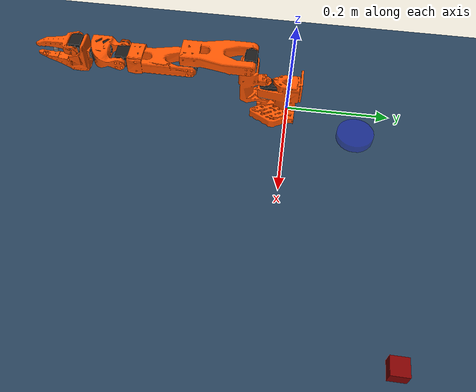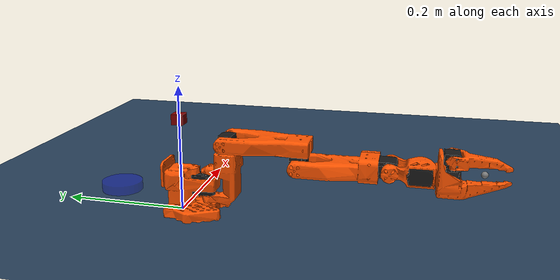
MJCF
<mujoco model="so100">
    <!-- The timestep has a big influence on the contacts stability -->
    <option cone="elliptic" impratio="10" timestep="0.002"/>

    <include file="so_arm100.xml"/>

    <statistic center="0 0 0.1" extent="0.6"/>

    <visual>
      <headlight diffuse="0.6 0.6 0.6" ambient="0.3 0.3 0.3" specular="0 0 0"/>
      <rgba haze="0.15 0.25 0.35 1"/>
      <global azimuth="150" elevation="-20" offheight="640"/>
    </visual>

    <asset>
      <texture type="skybox" builtin="gradient" rgb1="0.3 0.5 0.7" rgb2="0 0 0" width="512" height="3072"/>
      <texture type="2d" name="groundplane" builtin="checker" mark="edge" rgb1="0.2 0.3 0.4" rgb2="0.1 0.2 0.3"
        markrgb="0.8 0.8 0.8" width="300" height="300"/>
      <material name="groundplane" texture="groundplane" texuniform="true" texrepeat="5 5" reflectance="0.2"/>
    </asset>

    <worldbody>
      <light pos="0 0 3" dir="0 0 -1" directional="false"/>
      <geom name="floor" size="0 0 0.05" type="plane" material="groundplane" pos="0 0 0" friction="0.1"/>
      <body name="cube" pos="0.5 0.2 0.01">
          <freejoint name="red_box_joint"/>
          <inertial pos="0 0 0" mass="0.1" diaginertia="0.00016667 0.00016667 0.00016667"/>
          <geom friction="0.5" condim="4" pos="0 0 0" size="0.015 0.015 0.015" type="box" name="red_box" rgba="0.5 0 0 1" priority="1"/>
      </body>
          <camera name="camera_front" pos="0.049 0.5 0.225" xyaxes="-0.998 0.056 -0.000 -0.019 -0.335 0.942"/>
          <camera name="camera_top" pos="0 0.1 0.6" euler="0 0 0" mode="fixed"/>
          <camera name="camera_vizu" pos="-0.448 -0.796 0.488" xyaxes="0.739 -0.673 -0.000 0.338 0.371 0.865"/>

    <geom name="target_region" type="cylinder" pos=".06 .135 0.005" size="0.035 0.01" rgba="0 0 1 0.3"  contype="0" conaffinity="0" />

    </worldbody>

  </mujoco>

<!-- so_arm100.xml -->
<mujoco model="so_arm100">
  <compiler angle="radian" meshdir="assets/"/>

  <option cone="elliptic" impratio="10"/>

  <asset>
    <material name="orange" rgba="1.0 0.331 0.0 1.0" specular="0.1" shininess="0.1"/>
    <material name="black" rgba="0.1 0.1 0.1 1.0" specular="0.1" shininess="0.1"/>
    <material name="site_marker" rgba="1 0 0 0.5"/>
    <mesh name="Base" file="Base.stl"/>
    <mesh name="Base_Motor" file="Base_Motor.stl"/>
    <mesh name="Rotation_Pitch" file="Rotation_Pitch.stl"/>
    <mesh name="Rotation_Pitch_Motor" file="Rotation_Pitch_Motor.stl"/>
    <mesh name="Upper_Arm" file="Upper_Arm.stl"/>
    <mesh name="Upper_Arm_Motor" file="Upper_Arm_Motor.stl"/>
    <mesh name="Lower_Arm" file="Lower_Arm.stl"/>
    <mesh name="Lower_Arm_Motor" file="Lower_Arm_Motor.stl"/>
    <mesh name="Wrist_Pitch_Roll" file="Wrist_Pitch_Roll.stl"/>
    <mesh name="Wrist_Pitch_Roll_Motor" file="Wrist_Pitch_Roll_Motor.stl"/>
    <mesh name="Fixed_Jaw" file="Fixed_Jaw.stl"/>
    <mesh name="Fixed_Jaw_Motor" file="Fixed_Jaw_Motor.stl"/>
    <mesh name="Fixed_Jaw_Collision_1" file="Fixed_Jaw_Collision_1.stl"/>
    <mesh name="Fixed_Jaw_Collision_2" file="Fixed_Jaw_Collision_2.stl"/>
    <mesh name="Moving_Jaw" file="Moving_Jaw.stl"/>
    <mesh name="Moving_Jaw_Collision_1" file="Moving_Jaw_Collision_1.stl"/>
    <mesh name="Moving_Jaw_Collision_2" file="Moving_Jaw_Collision_2.stl"/>
    <mesh name="Moving_Jaw_Collision_3" file="Moving_Jaw_Collision_3.stl"/>
  </asset>

  <default>
    <default class="so_arm100">
      <joint frictionloss="0.1" armature="0.1" damping="2"/>
      <position kp="50" forcerange="-35 35" ctrlrange="-3.14158 3.14158" forcelimited="true" ctrllimited="true"/>
      <default class="Rotation">
        <joint axis="0 1 0" range="-2.2 2.2" limited="true"/>
      </default>
      <default class="Pitch">
        <joint axis="1 0 0" range="-3.14158 0.2" limited="true"/>
      </default>
      <default class="Elbow">
        <joint axis="1 0 0" range="0 3.14158" limited="true"/>
      </default>
      <default class="Wrist_Pitch">
        <joint axis="1 0 0" range="-2.0 1.8" limited="true"/>
      </default>
      <default class="Wrist_Roll">
        <joint axis="0 1 0" range="-3.14158 3.14158" limited="true"/>
      </default>
      <default class="Jaw">
        <joint axis="0 0 1" range="-0.2 2.0" limited="true"/>
      </default>
      <default class="visual">
        <geom type="mesh" contype="0" conaffinity="0" density="0" group="2" material="orange"/>
        <default class="motor_visual">
          <geom material="black"/>
        </default>
      </default>
      <default class="collision">
        <geom group="3" type="mesh"/>
        <default class="finger_collision">
          <geom type="box" solimp="2 1 0.01" solref="0.01 1" friction="1 0.005 0.0001"/>
        </default>
      </default>
    </default>
  </default>

  <worldbody>
    <body name="Base" childclass="so_arm100">
      <geom type="mesh" mesh="Base" class="visual"/>
      <geom type="mesh" mesh="Base_Motor" class="motor_visual"/>
      <geom type="mesh" mesh="Base" class="collision"/>
      <body name="Rotation_Pitch" pos="0 -0.0452 0.0165" quat="0.707105 0.707108 0 0">
        <inertial pos="-9.07886e-05 0.0590972 0.031089" quat="0.363978 0.441169 -0.623108 0.533504" mass="0.119226"
          diaginertia="5.94278e-05 5.89975e-05 3.13712e-05"/>
        <joint name="Rotation" class="Rotation"/>
        <geom type="mesh" mesh="Rotation_Pitch" class="visual"/>
        <geom type="mesh" mesh="Rotation_Pitch_Motor" class="motor_visual"/>
        <geom type="mesh" mesh="Rotation_Pitch" class="collision"/>
        <body name="Upper_Arm" pos="0 0.1025 0.0306" euler="1.57079 0 0">
          <inertial pos="-1.72052e-05 0.0701802 0.00310545" quat="0.50104 0.498994 -0.493562 0.50632" mass="0.162409"
            diaginertia="0.000213312 0.000167164 7.01522e-05"/>
          <joint name="Pitch" class="Pitch"/>
          <geom type="mesh" mesh="Upper_Arm" class="visual"/>
          <geom type="mesh" mesh="Upper_Arm_Motor" class="motor_visual"/>
          <geom type="mesh" mesh="Upper_Arm" class="collision"/>
          <body name="Lower_Arm" pos="0 0.11257 0.028" euler="-1.57079 0 0">
            <inertial pos="-0.00339604 0.00137796 0.0768007" quat="0.701995 0.0787996 0.0645626 0.704859"
              mass="0.147968" diaginertia="0.000138803 0.000107748 4.84242e-05"/>
            <joint name="Elbow" class="Elbow"/>
            <geom type="mesh" mesh="Lower_Arm" class="visual"/>
            <geom type="mesh" mesh="Lower_Arm_Motor" class="motor_visual"/>
            <geom type="mesh" mesh="Lower_Arm" class="collision"/>
            <body name="Wrist_Pitch_Roll" pos="0 0.0052 0.1349" euler="-1.57079 0 0">
              <inertial pos="-0.00852653 -0.0352279 -2.34622e-05" quat="-0.0522806 0.705235 0.0549524 0.704905"
                mass="0.0661321" diaginertia="3.45403e-05 2.39041e-05 1.94704e-05"/>
              <joint name="Wrist_Pitch" class="Wrist_Pitch"/>
              <geom type="mesh" mesh="Wrist_Pitch_Roll" class="visual"/>
              <geom type="mesh" mesh="Wrist_Pitch_Roll_Motor" class="motor_visual"/>
              <geom type="mesh" mesh="Wrist_Pitch_Roll" class="collision"/>
              <body name="Fixed_Jaw" pos="0 -0.0601 0" euler="0 1.57079 0">
                <inertial pos="0.00552377 -0.0280167 0.000483583" quat="0.41836 0.620891 -0.350644 0.562599"
                  mass="0.0929859" diaginertia="5.03136e-05 4.64098e-05 2.72961e-05"/>
                <site name="end_effector_site"
                  pos="0 -0.07 0"
                  quat="1 0 0 0"/>
                <joint name="Wrist_Roll" class="Wrist_Roll"/>
                <geom type="mesh" mesh="Fixed_Jaw" class="visual"/>
                <geom type="mesh" mesh="Fixed_Jaw_Motor" class="motor_visual"/>
                <geom type="mesh" mesh="Fixed_Jaw_Collision_1" class="collision"/>
                <geom type="mesh" mesh="Fixed_Jaw_Collision_2" class="collision"/>
                <geom class="finger_collision" name="fixed_jaw_pad_1" size="0.001 0.005 0.004" pos="0.0089 -0.1014 0"/>
                <geom class="finger_collision" name="fixed_jaw_pad_2" size="0.001 0.005 0.006" pos="0.0109 -0.0914 0"/>
                <geom class="finger_collision" name="fixed_jaw_pad_3" size="0.001 0.01 0.007" pos="0.0126 -0.0768 0"/>
                <geom class="finger_collision" name="fixed_jaw_pad_4" size="0.001 0.01 0.008" pos="0.0143 -0.0572 0"/>
                <body name="Moving_Jaw" pos="-0.0202 -0.0244 0" quat="1.34924e-11 -3.67321e-06 1 -3.67321e-06">
                  <inertial pos="-0.00161745 -0.0303473 0.000449646" quat="0.696562 0.716737 -0.0239844 -0.0227026"
                    mass="0.0202444" diaginertia="1.11265e-05 8.99651e-06 2.99548e-06"/>
                  <joint name="Jaw" class="Jaw"/>
                  <geom type="mesh" mesh="Moving_Jaw" class="visual"/>
                  <geom type="mesh" mesh="Moving_Jaw_Collision_1" class="collision"/>
                  <geom type="mesh" mesh="Moving_Jaw_Collision_2" class="collision"/>
                  <geom type="mesh" mesh="Moving_Jaw_Collision_3" class="collision"/>
                  <geom class="finger_collision" name="moving_jaw_pad_1" size="0.001 0.005 0.004" pos="-0.0113 -0.077 0"/>
                  <geom class="finger_collision" name="moving_jaw_pad_2" size="0.001 0.005 0.006" pos="-0.0093 -0.067 0"/>
                  <geom class="finger_collision" name="moving_jaw_pad_3" size="0.001 0.01 0.006" pos="-0.0073 -0.055 0"/>
                  <geom class="finger_collision" name="moving_jaw_pad_4" size="0.001 0.01 0.008" pos="-0.0073 -0.035 0"/>
                </body>
              </body>
            </body>
          </body>
        </body>
      </body>
    </body>
  </worldbody>

  <actuator>
    <position class="Rotation" name="Rotation" joint="Rotation"/>
    <position class="Pitch" name="Pitch" joint="Pitch"/>
    <position class="Elbow" name="Elbow" joint="Elbow"/>
    <position class="Wrist_Pitch" name="Wrist_Pitch" joint="Wrist_Pitch"/>
    <position class="Wrist_Roll" name="Wrist_Roll" joint="Wrist_Roll"/>
    <position class="Jaw" name="Jaw" joint="Jaw"/>
  </actuator>

  <contact>
    <exclude body1="Base" body2="Rotation_Pitch"/>
  </contact>
</mujoco>
